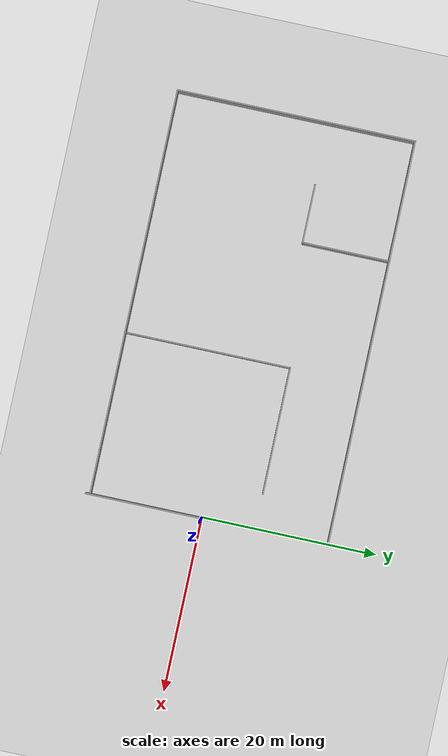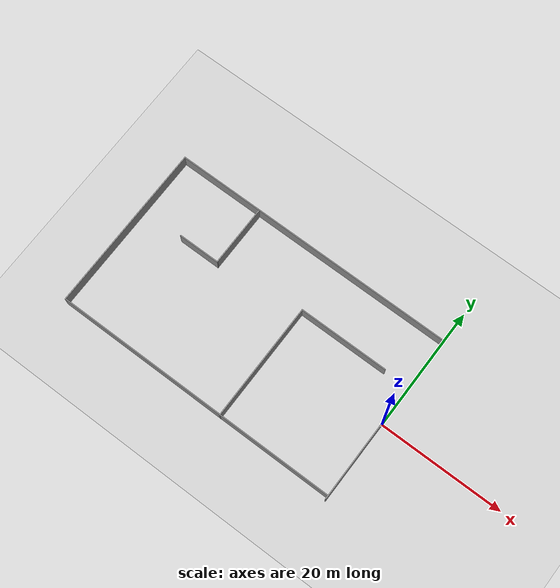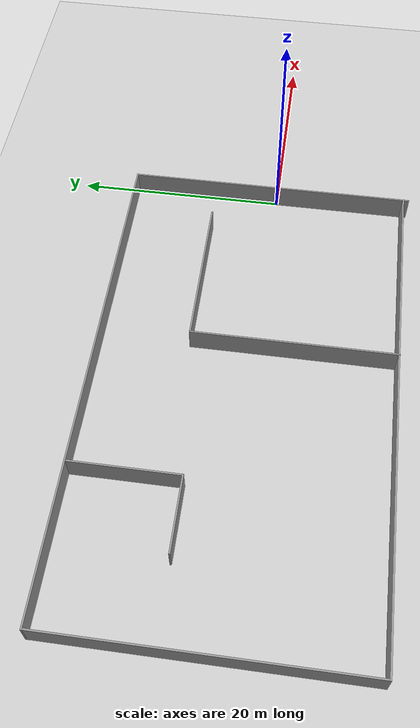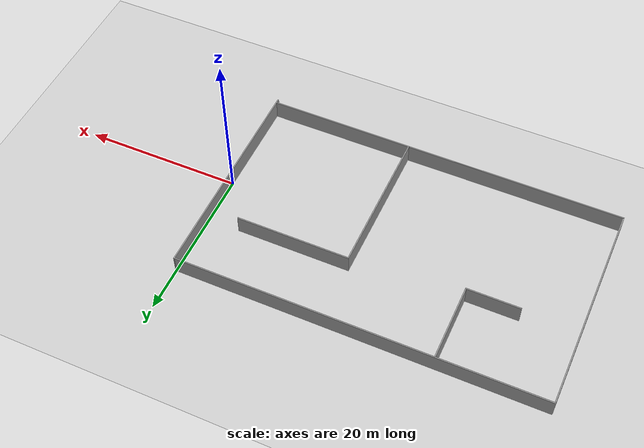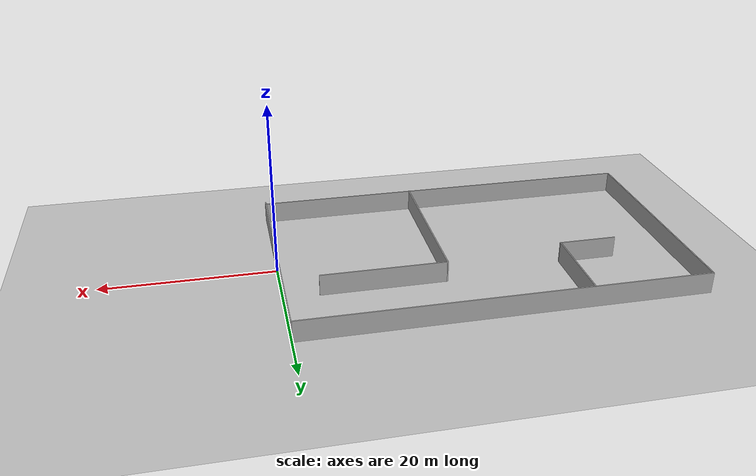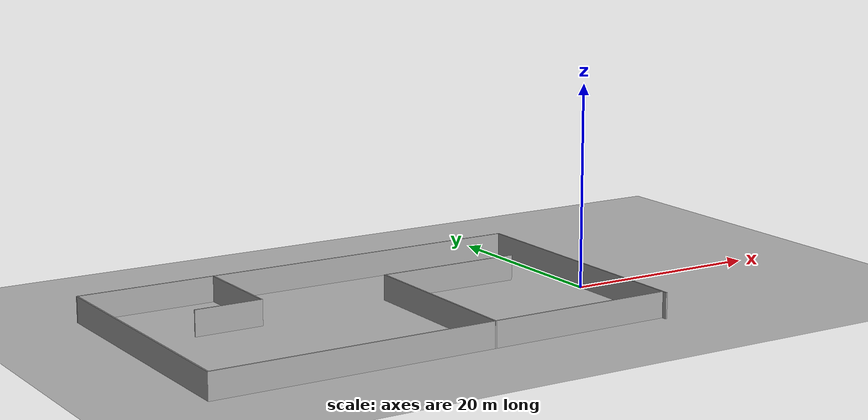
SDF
<sdf version="1.7">
 <world name="default">
  <light name="sun" type="directional">
   <pose>0 0 10 0 -0 0</pose>
   <diffuse>0.8 0.8 0.8 1</diffuse>
   <specular>0.2 0.2 0.2 1</specular>
   <attenuation>
    <range>1000</range>
    <constant>0.9</constant>
    <linear>0.01</linear>
    <quadratic>0.001</quadratic>
   </attenuation>
   <direction>-0.5 0.1 -0.9</direction>
   <spot><inner_angle>0</inner_angle><outer_angle>0</outer_angle><falloff>0</falloff></spot>
  </light>
  <model name="ground_plane">
   <static>1</static>
   <link name="link">
    <collision name="collision">
     <geometry><plane><normal>0 0 1</normal><size>100 100</size></plane></geometry>
     <surface>
      <contact><collide_bitmask>65535</collide_bitmask></contact>
      <friction><ode><mu>100</mu><mu2>50</mu2></ode></friction>
     </surface>
    </collision>
    <visual name="visual">
     <cast_shadows>0</cast_shadows>
     <geometry><plane><normal>0 0 1</normal><size>100 100</size></plane></geometry>
     <material>
      <script><uri>file://media/materials/scripts/gazebo.material</uri><name>Gazebo/Grey</name></script>
     </material>
    </visual>
   </link>
  </model>
  <gravity>0 0 -9.8</gravity>
  <magnetic_field>6e-06 2.3e-05 -4.2e-05</magnetic_field>
  <atmosphere type="adiabatic"/>
  <physics type="ode">
   <max_step_size>0.001</max_step_size>
   <real_time_factor>1</real_time_factor>
   <real_time_update_rate>1000</real_time_update_rate>
  </physics>
  <scene><ambient>0.4 0.4 0.4 1</ambient><background>0.7 0.7 0.7 1</background><shadows>1</shadows></scene>
  <audio><device>default</device></audio>
  <spherical_coordinates>
   <surface_model>EARTH_WGS84</surface_model>
   <latitude_deg>0</latitude_deg>
   <longitude_deg>0</longitude_deg>
   <elevation>0</elevation>
   <heading_deg>0</heading_deg>
  </spherical_coordinates>
  <model name="Untitled">
   <pose>-23.0313 0.607696 0 0 -0 0</pose>
   <link name="Wall_10">
    <collision name="Wall_10_Collision">
     <geometry><box><size>14.5 0.15 2.5</size></box></geometry>
     <pose>0 0 1.25 0 -0 0</pose>
    </collision>
    <visual name="Wall_10_Visual">
     <pose>0 0 1.25 0 -0 0</pose>
     <geometry><box><size>14.5 0.15 2.5</size></box></geometry>
     <material>
      <script><uri>file://media/materials/scripts/gazebo.material</uri><name>Gazebo/Grey</name></script>
      <ambient>1 1 1 1</ambient>
     </material>
     <meta><layer>0</layer></meta>
    </visual>
    <pose>11.763 5.5182 0 0 -0 0</pose>
   </link>
   <link name="Wall_12">
    <collision name="Wall_12_Collision">
     <geometry><box><size>10 0.15 2.5</size></box></geometry>
     <pose>0 0 1.25 0 -0 0</pose>
    </collision>
    <visual name="Wall_12_Visual">
     <pose>0 0 1.25 0 -0 0</pose>
     <geometry><box><size>10 0.15 2.5</size></box></geometry>
     <material>
      <script><uri>file://media/materials/scripts/gazebo.material</uri><name>Gazebo/Grey</name></script>
      <ambient>1 1 1 1</ambient>
     </material>
     <meta><layer>0</layer></meta>
    </visual>
    <pose>-9.36114 8.84614 0 0 -0 -1.5708</pose>
   </link>
   <link name="Wall_13">
    <collision name="Wall_13_Collision">
     <geometry><box><size>6.75 0.15 2.5</size></box></geometry>
     <pose>0 0 1.25 0 -0 0</pose>
    </collision>
    <visual name="Wall_13_Visual">
     <pose>0 0 1.25 0 -0 0</pose>
     <geometry><box><size>6.75 0.15 2.5</size></box></geometry>
     <material>
      <script><uri>file://media/materials/scripts/gazebo.material</uri><name>Gazebo/Grey</name></script>
      <ambient>1 1 1 1</ambient>
     </material>
     <meta><layer>0</layer></meta>
    </visual>
    <pose>-12.6611 3.92114 0 0 -0 3.14159</pose>
   </link>
   <link name="Wall_2">
    <collision name="Wall_2_Collision">
     <geometry><box><size>27.75 0.15 2.5</size></box></geometry>
     <pose>0 0 1.25 0 -0 0</pose>
    </collision>
    <visual name="Wall_2_Visual">
     <pose>0 0 1.25 0 -0 0</pose>
     <geometry><box><size>27.75 0.15 2.5</size></box></geometry>
     <material>
      <script><uri>file://media/materials/scripts/gazebo.material</uri><name>Gazebo/Grey</name></script>
      <ambient>1 1 1 1</ambient>
     </material>
     <meta><layer>0</layer></meta>
    </visual>
    <pose>23.05 0 0 0 -0 1.5708</pose>
   </link>
   <link name="Wall_3">
    <collision name="Wall_3_Collision">
     <geometry><box><size>46.25 0.15 2.5</size></box></geometry>
     <pose>0 0 1.25 0 -0 0</pose>
    </collision>
    <visual name="Wall_3_Visual">
     <pose>0 0 1.25 0 -0 0</pose>
     <geometry><box><size>46.25 0.15 2.5</size></box></geometry>
     <material>
      <script><uri>file://media/materials/scripts/gazebo.material</uri><name>Gazebo/Grey</name></script>
      <ambient>1 1 1 1</ambient>
     </material>
     <meta><layer>0</layer></meta>
    </visual>
    <pose>-1e-06 13.8 0 0 -0 3.14159</pose>
   </link>
   <link name="Wall_4">
    <collision name="Wall_4_Collision">
     <geometry><box><size>27.25 0.15 2.5</size></box></geometry>
     <pose>0 0 1.25 0 -0 0</pose>
    </collision>
    <visual name="Wall_4_Visual">
     <pose>0 0 1.25 0 -0 0</pose>
     <geometry><box><size>27.25 0.15 2.5</size></box></geometry>
     <material>
      <script><uri>file://media/materials/scripts/gazebo.material</uri><name>Gazebo/Grey</name></script>
      <ambient>1 1 1 1</ambient>
     </material>
     <meta><layer>0</layer></meta>
    </visual>
    <pose>-23.05 0.25 0 0 -0 -1.5708</pose>
   </link>
   <link name="Wall_5">
    <collision name="Wall_5_Collision">
     <geometry><box><size>46.25 0.15 2.5</size></box></geometry>
     <pose>0 0 1.25 0 -0 0</pose>
    </collision>
    <visual name="Wall_5_Visual">
     <pose>0 0 1.25 0 -0 0</pose>
     <geometry><box><size>46.25 0.15 2.5</size></box></geometry>
     <material>
      <script><uri>file://media/materials/scripts/gazebo.material</uri><name>Gazebo/Grey</name></script>
      <ambient>1 1 1 1</ambient>
     </material>
     <meta><layer>0</layer></meta>
    </visual>
    <pose>-1e-06 -13.3 0 0 -0 0</pose>
   </link>
   <link name="Wall_9">
    <collision name="Wall_9_Collision">
     <geometry><box><size>19 0.15 2.5</size></box></geometry>
     <pose>0 0 1.25 0 -0 0</pose>
    </collision>
    <visual name="Wall_9_Visual">
     <pose>0 0 1.25 0 -0 0</pose>
     <geometry><box><size>19 0.15 2.5</size></box></geometry>
     <material>
      <script><uri>file://media/materials/scripts/gazebo.material</uri><name>Gazebo/Grey</name></script>
      <ambient>1 1 1 1</ambient>
     </material>
     <meta><layer>0</layer></meta>
    </visual>
    <pose>4.58801 -3.9068 0 0 -0 1.5708</pose>
   </link>
   <static>1</static>
  </model>
 </world>
</sdf>
